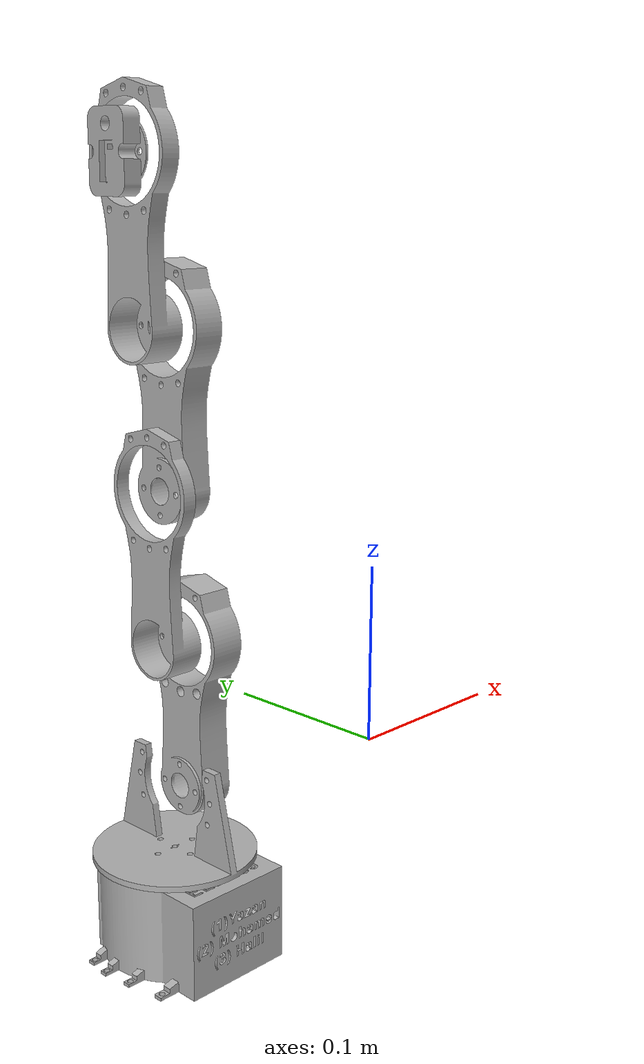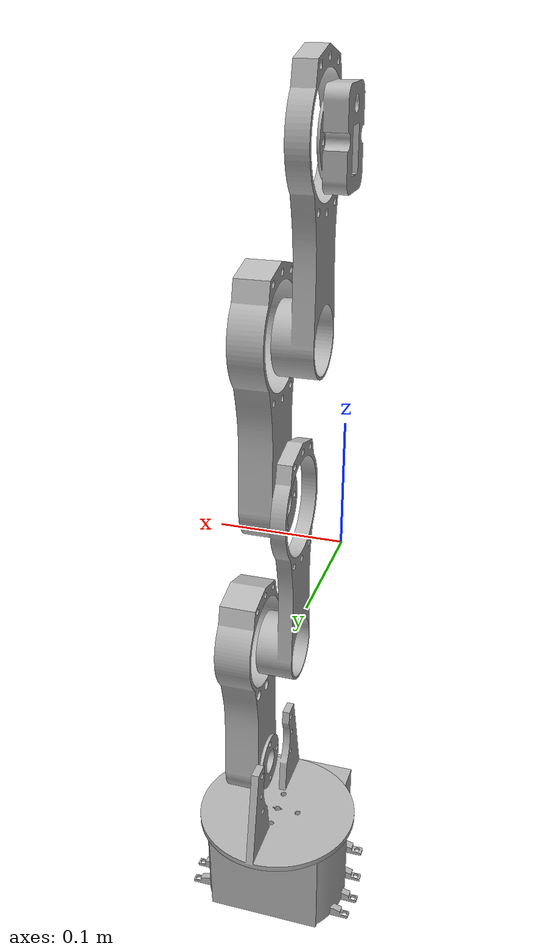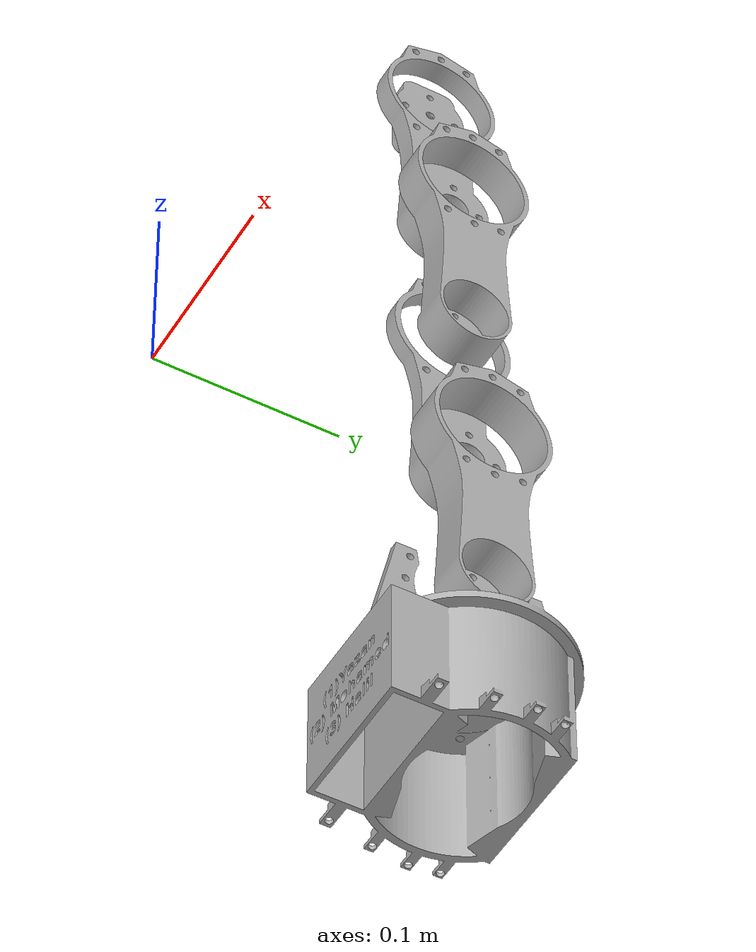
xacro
<?xml version="1.0"?>
<robot xmlns:xacro="http://www.ros.org/wiki/xacro" name="urdf_expoert_second_design">
    <xacro:arg name="initial_positions_file" default="initial_positions.yaml" />

    <!-- Import urdf_expoert_second_design urdf file -->
    <xacro:include filename="$(find working_robot)/urdf/marco1.urdf" />

    <!-- Import control_xacro -->
    <xacro:include filename="urdf_expoert_second_design.ros2_control.xacro" />

    <xacro:urdf_expoert_second_design_ros2_control name="FakeSystem" initial_positions_file="$(arg initial_positions_file)"/>

</robot>

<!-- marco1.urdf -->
<!-- |    This document was autogenerated by xacro from /home/yazan/ros2_new_ws/install/working_robot/share/working_robot/urdf/urdf_expoert_second_design.xacro | -->
<!-- |    EDITING THIS FILE BY HAND IS NOT RECOMMENDED                                 | -->
<robot name="urdf_expoert_second_design">
  <material name="silver">
    <color rgba="0.700 0.700 0.700 1.000"/>
  </material>
  <transmission name="bottom_holder_rotation_tran">
    <type>transmission_interface/SimpleTransmission</type>
    <joint name="bottom_holder_rotation">
      <hardwareInterface>hardware_interface/EffortJointInterface</hardwareInterface>
    </joint>
    <actuator name="bottom_holder_rotation_actr">
      <hardwareInterface>hardware_interface/EffortJointInterface</hardwareInterface>
      <mechanicalReduction>1</mechanicalReduction>
    </actuator>
  </transmission>
  <transmission name="shoulder_arm_rotation_tran">
    <type>transmission_interface/SimpleTransmission</type>
    <joint name="shoulder_arm_rotation">
      <hardwareInterface>hardware_interface/EffortJointInterface</hardwareInterface>
    </joint>
    <actuator name="shoulder_arm_rotation_actr">
      <hardwareInterface>hardware_interface/EffortJointInterface</hardwareInterface>
      <mechanicalReduction>1</mechanicalReduction>
    </actuator>
  </transmission>
  <transmission name="arm_holder_right_after_shoulder_rotation_tran">
    <type>transmission_interface/SimpleTransmission</type>
    <joint name="arm_holder_right_after_shoulder_rotation">
      <hardwareInterface>hardware_interface/EffortJointInterface</hardwareInterface>
    </joint>
    <actuator name="arm_holder_right_after_shoulder_rotation_actr">
      <hardwareInterface>hardware_interface/EffortJointInterface</hardwareInterface>
      <mechanicalReduction>1</mechanicalReduction>
    </actuator>
  </transmission>
  <transmission name="elbow_arm_rotation_tran">
    <type>transmission_interface/SimpleTransmission</type>
    <joint name="elbow_arm_rotation">
      <hardwareInterface>hardware_interface/EffortJointInterface</hardwareInterface>
    </joint>
    <actuator name="elbow_arm_rotation_actr">
      <hardwareInterface>hardware_interface/EffortJointInterface</hardwareInterface>
      <mechanicalReduction>1</mechanicalReduction>
    </actuator>
  </transmission>
  <transmission name="gripper_holder_rotation_tran">
    <type>transmission_interface/SimpleTransmission</type>
    <joint name="gripper_holder_rotation">
      <hardwareInterface>hardware_interface/EffortJointInterface</hardwareInterface>
    </joint>
    <actuator name="gripper_holder_rotation_actr">
      <hardwareInterface>hardware_interface/EffortJointInterface</hardwareInterface>
      <mechanicalReduction>1</mechanicalReduction>
    </actuator>
  </transmission>
  <transmission name="end_factor_rotation_tran">
    <type>transmission_interface/SimpleTransmission</type>
    <joint name="end_factor_rotation">
      <hardwareInterface>hardware_interface/EffortJointInterface</hardwareInterface>
    </joint>
    <actuator name="end_factor_rotation_actr">
      <hardwareInterface>hardware_interface/EffortJointInterface</hardwareInterface>
      <mechanicalReduction>1</mechanicalReduction>
    </actuator>
  </transmission>
  <gazebo reference="base_link">
    <material>Gazebo/Silver</material>
    <mu1>0.2</mu1>
    <mu2>0.2</mu2>
    <selfCollide>true</selfCollide>
    <gravity>true</gravity>
  </gazebo>
  <gazebo reference="bottom_holder_1">
    <material>Gazebo/Silver</material>
    <mu1>0.2</mu1>
    <mu2>0.2</mu2>
    <selfCollide>true</selfCollide>
  </gazebo>
  <gazebo reference="shoulder_arm_1">
    <material>Gazebo/Silver</material>
    <mu1>0.2</mu1>
    <mu2>0.2</mu2>
    <selfCollide>true</selfCollide>
  </gazebo>
  <gazebo reference="arm_holder_right_after_shoulder_1">
    <material>Gazebo/Silver</material>
    <mu1>0.2</mu1>
    <mu2>0.2</mu2>
    <selfCollide>true</selfCollide>
  </gazebo>
  <gazebo reference="elbow_arm_1">
    <material>Gazebo/Silver</material>
    <mu1>0.2</mu1>
    <mu2>0.2</mu2>
    <selfCollide>true</selfCollide>
  </gazebo>
  <gazebo reference="gripper_holder_1">
    <material>Gazebo/Silver</material>
    <mu1>0.2</mu1>
    <mu2>0.2</mu2>
    <selfCollide>true</selfCollide>
  </gazebo>
  <gazebo reference="robotic_arm_gripper_1">
    <material>Gazebo/Silver</material>
    <mu1>0.2</mu1>
    <mu2>0.2</mu2>
    <selfCollide>true</selfCollide>
  </gazebo>
  <link name="base_link">
    <inertial>
      <origin rpy="0 0 0" xyz="-1.1009238833671162e-05 0.16094415069111942 -0.1654471209389099"/>
      <mass value="1.112848875133212"/>
      <inertia ixx="0.001522" ixy="-1e-06" ixz="-0.0" iyy="0.001532" iyz="3e-06" izz="0.002232"/>
    </inertial>
    <visual>
      <origin rpy="0 0 0" xyz="0 0 0"/>
      <geometry>
        <mesh filename="package://working_robot/meshes/base_link.stl" scale="0.001 0.001 0.001"/>
      </geometry>
      <material name="silver"/>
    </visual>
    <collision>
      <origin rpy="0 0 0" xyz="0 0 0"/>
      <geometry>
        <mesh filename="package://working_robot/meshes/base_link.stl" scale="0.001 0.001 0.001"/>
      </geometry>
    </collision>
  </link>
  <link name="bottom_holder_1">
    <inertial>
      <origin rpy="0 0 0" xyz="0.000632156036678196 -2.4478357749102564e-07 0.010690196353127165"/>
      <mass value="0.4117289758525692"/>
      <inertia ixx="0.000453" ixy="0.0" ixz="-5e-06" iyy="0.00031" iyz="0.0" izz="0.000582"/>
    </inertial>
    <visual>
      <origin rpy="0 0 0" xyz="0.0 -0.167935 0.132865"/>
      <geometry>
        <mesh filename="package://working_robot/meshes/bottom_holder_1.stl" scale="0.001 0.001 0.001"/>
      </geometry>
      <material name="silver"/>
    </visual>
    <collision>
      <origin rpy="0 0 0" xyz="0.0 -0.167935 0.132865"/>
      <geometry>
        <mesh filename="package://working_robot/meshes/bottom_holder_1.stl" scale="0.001 0.001 0.001"/>
      </geometry>
    </collision>
  </link>
  <link name="shoulder_arm_1">
    <inertial>
      <origin rpy="0 0 0" xyz="0.013333633194672827 -2.4478296409280453e-07 0.05560761862628329"/>
      <mass value="0.5526510438521538"/>
      <inertia ixx="0.000979" ixy="0.0" ixz="-1.5e-05" iyy="0.000893" iyz="0.0" izz="0.00014"/>
    </inertial>
    <visual>
      <origin rpy="0 0 0" xyz="-0.005 -0.167935 0.084465"/>
      <geometry>
        <mesh filename="package://working_robot/meshes/shoulder_arm_1.stl" scale="0.001 0.001 0.001"/>
      </geometry>
      <material name="silver"/>
    </visual>
    <collision>
      <origin rpy="0 0 0" xyz="-0.005 -0.167935 0.084465"/>
      <geometry>
        <mesh filename="package://working_robot/meshes/shoulder_arm_1.stl" scale="0.001 0.001 0.001"/>
      </geometry>
    </collision>
  </link>
  <link name="arm_holder_right_after_shoulder_1">
    <inertial>
      <origin rpy="0 0 0" xyz="-0.016575109155223963 -2.2569197652422268e-07 0.050146773600070936"/>
      <mass value="0.25335323203607535"/>
      <inertia ixx="0.000486" ixy="0.0" ixz="2.5e-05" iyy="0.000441" iyz="0.0" izz="6.2e-05"/>
    </inertial>
    <visual>
      <origin rpy="0 0 0" xyz="-0.0072 -0.167935 -0.015535"/>
      <geometry>
        <mesh filename="package://working_robot/meshes/arm_holder_right_after_shoulder_1.stl" scale="0.001 0.001 0.001"/>
      </geometry>
      <material name="silver"/>
    </visual>
    <collision>
      <origin rpy="0 0 0" xyz="-0.0072 -0.167935 -0.015535"/>
      <geometry>
        <mesh filename="package://working_robot/meshes/arm_holder_right_after_shoulder_1.stl" scale="0.001 0.001 0.001"/>
      </geometry>
    </collision>
  </link>
  <link name="elbow_arm_1">
    <inertial>
      <origin rpy="0 0 0" xyz="0.012610794300089932 -2.447837582630896e-07 0.05575758634221434"/>
      <mass value="0.48863224602939626"/>
      <inertia ixx="0.00085" ixy="-0.0" ixz="-1.2e-05" iyy="0.000769" iyz="-0.0" izz="0.000118"/>
    </inertial>
    <visual>
      <origin rpy="0 0 0" xyz="0.0068 -0.167935 -0.115535"/>
      <geometry>
        <mesh filename="package://working_robot/meshes/elbow_arm_1.stl" scale="0.001 0.001 0.001"/>
      </geometry>
      <material name="silver"/>
    </visual>
    <collision>
      <origin rpy="0 0 0" xyz="0.0068 -0.167935 -0.115535"/>
      <geometry>
        <mesh filename="package://working_robot/meshes/elbow_arm_1.stl" scale="0.001 0.001 0.001"/>
      </geometry>
    </collision>
  </link>
  <link name="gripper_holder_1">
    <inertial>
      <origin rpy="0 0 0" xyz="-0.015708268904436173 -2.447836850993923e-07 0.0520955229905882"/>
      <mass value="0.31483005565452693"/>
      <inertia ixx="0.000579" ixy="-0.0" ixz="2.2e-05" iyy="0.000524" iyz="0.0" izz="7.3e-05"/>
    </inertial>
    <visual>
      <origin rpy="0 0 0" xyz="0.0038 -0.167935 -0.215535"/>
      <geometry>
        <mesh filename="package://working_robot/meshes/gripper_holder_1.stl" scale="0.001 0.001 0.001"/>
      </geometry>
      <material name="silver"/>
    </visual>
    <collision>
      <origin rpy="0 0 0" xyz="0.0038 -0.167935 -0.215535"/>
      <geometry>
        <mesh filename="package://working_robot/meshes/gripper_holder_1.stl" scale="0.001 0.001 0.001"/>
      </geometry>
    </collision>
  </link>
  <link name="robotic_arm_gripper_1">
    <inertial>
      <origin rpy="0 0 0" xyz="-0.006695702869069793 -1.977584226653395e-07 0.0004126600011846171"/>
      <mass value="0.12123840028389098"/>
      <inertia ixx="3.7e-05" ixy="0.0" ixz="0.0" iyy="2.7e-05" iyz="-0.0" izz="1.3e-05"/>
    </inertial>
    <visual>
      <origin rpy="0 0 0" xyz="0.0269 -0.167935 -0.315535"/>
      <geometry>
        <mesh filename="package://working_robot/meshes/robotic_arm_gripper_1.stl" scale="0.001 0.001 0.001"/>
      </geometry>
      <material name="silver"/>
    </visual>
    <collision>
      <origin rpy="0 0 0" xyz="0.0269 -0.167935 -0.315535"/>
      <geometry>
        <mesh filename="package://working_robot/meshes/robotic_arm_gripper_1.stl" scale="0.001 0.001 0.001"/>
      </geometry>
    </collision>
  </link>
  <joint name="bottom_holder_rotation" type="revolute">
    <origin rpy="0 0 0" xyz="0.0 0.167935 -0.132865"/>
    <parent link="base_link"/>
    <child link="bottom_holder_1"/>
    <limit lower="-3.14" upper="3.14" effort="10" velocity="1.0"/>
    <axis xyz="0.0 0.0 1.0"/>
  </joint>
  <joint name="shoulder_arm_rotation" type="revolute">
    <origin rpy="0 0 0" xyz="0.005 0.0 0.0484"/>
    <parent link="bottom_holder_1"/>
    <child link="shoulder_arm_1"/>
    <limit lower="-3.14" upper="3.14" effort="10" velocity="1.0"/>
    <axis xyz="1.0 0.0 0.0"/>
  </joint>
  <joint name="arm_holder_right_after_shoulder_rotation" type="revolute">
    <origin rpy="0 0 0" xyz="0.0022 0.0 0.1"/>
    <parent link="shoulder_arm_1"/>
    <child link="arm_holder_right_after_shoulder_1"/>
    <limit lower="-3.14" upper="3.14" effort="10" velocity="1.0"/>
    <axis xyz="-1.0 0.0 0.0"/>
  </joint>
  <joint name="elbow_arm_rotation" type="revolute">
    <origin rpy="0 0 0" xyz="-0.014 0.0 0.1"/>
    <parent link="arm_holder_right_after_shoulder_1"/>
    <child link="elbow_arm_1"/>
    <limit lower="-3.14" upper="3.14" effort="10" velocity="1.0"/>
    <axis xyz="1.0 0.0 0.0"/>
  </joint>
  <joint name="gripper_holder_rotation" type="revolute">
    <origin rpy="0 0 0" xyz="0.003 0.0 0.1"/>
    <parent link="elbow_arm_1"/>
    <child link="gripper_holder_1"/>
    <limit lower="-3.14" upper="3.14" effort="10" velocity="1.0"/>
    <axis xyz="-1.0 -0.0 -0.0"/>
  </joint>
  <joint name="end_factor_rotation" type="revolute">
    <origin rpy="0 0 0" xyz="-0.0231 0.0 0.1"/>
    <parent link="gripper_holder_1"/>
    <child link="robotic_arm_gripper_1"/>
    <limit lower="-3.14" upper="3.14" effort="10" velocity="1.0"/>
    <axis xyz="-1.0 0.0 -0.0"/>
  </joint>

<ros2_control name="FakeSystem" type="system">
  <hardware>
    <plugin>mock_components/GenericSystem</plugin>
  </hardware>

  <joint name="bottom_holder_rotation">
    <command_interface name="position">
      <param name="min">-3.14</param>
      <param name="max">3.14</param>
    </command_interface>
    <state_interface name="position">
      <param name="initial_value">0.0</param>
    </state_interface>
    <state_interface name="velocity"/>
  </joint>

  <joint name="shoulder_arm_rotation">
    <command_interface name="position">
      <param name="min">-1.57</param>
      <param name="max">1.57</param>
    </command_interface>
    <state_interface name="position">
      <param name="initial_value">0.0</param>
    </state_interface>
    <state_interface name="velocity"/>
  </joint>

  <joint name="arm_holder_right_after_shoulder_rotation">
    <command_interface name="position">
      <param name="min">-1.57</param>
      <param name="max">1.57</param>
    </command_interface>
    <state_interface name="position">
      <param name="initial_value">0.0</param>
    </state_interface>
    <state_interface name="velocity"/>
  </joint>

  <joint name="elbow_arm_rotation">
    <command_interface name="position">
      <param name="min">-1.57</param>
      <param name="max">1.57</param>
    </command_interface>
    <state_interface name="position">
      <param name="initial_value">0.0</param>
    </state_interface>
    <state_interface name="velocity"/>
  </joint>

  <joint name="gripper_holder_rotation">
    <command_interface name="position">
      <param name="min">-3.14</param>
      <param name="max">3.14</param>
    </command_interface>
    <state_interface name="position">
      <param name="initial_value">0.0</param>
    </state_interface>
    <state_interface name="velocity"/>
  </joint>

  <joint name="end_factor_rotation">
    <command_interface name="position">
      <param name="min">-3.14</param>
      <param name="max">3.14</param>
    </command_interface>
    <state_interface name="position">
      <param name="initial_value">0.0</param>
    </state_interface>
    <state_interface name="velocity"/>
  </joint>
</ros2_control>

</robot>
